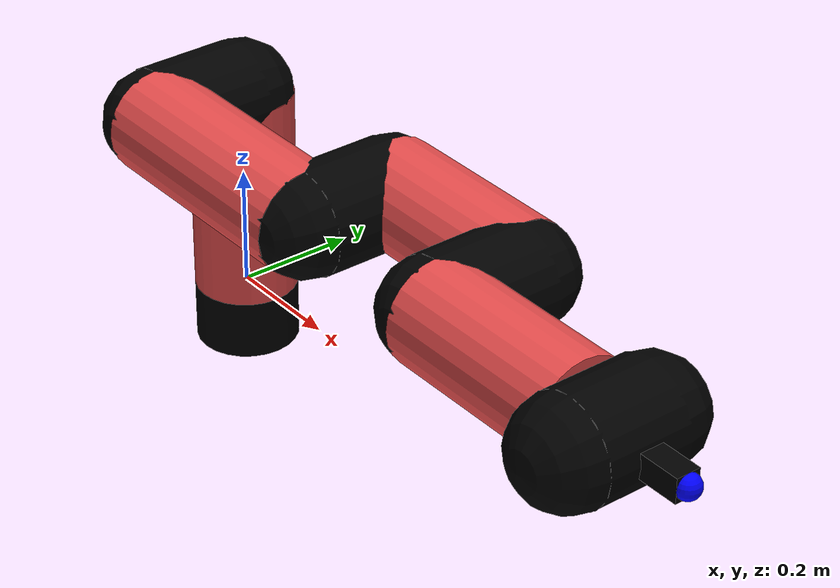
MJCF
<mujoco model="manipulator">
		<compiler angle="degree" coordinate="local" inertiafromgeom="auto" meshdir="meshes/"/>
		<option gravity="0 0 0" integrator="RK4" iterations="30" timestep="0.01"/>

		<default>
		<joint armature="1" limited="true" stiffness="10" damping="15" frictionloss="5.0"/>
		<geom conaffinity="1" condim="3" contype="1" friction=".5 .1 .1" margin="0.002"/>
		<motor ctrllimited="true"/>
		<position ctrllimited="true"/>
		</default>

		<asset>
		<texture builtin="gradient" height="100" rgb1="1.0 1.0 1.0" rgb2="1.0 1.0 1.0" type="skybox" width="100"/>
		<texture builtin="flat" height="32" name="arm_tex" rgb1="0.9 0.3 0.3" type="2d" width="32"/>
		<texture builtin="flat" height="32" name="gripper_tex" rgb1="0.0 0.0 0.0" type="cube" width="32"/>

		<material name="arm_mat" shininess="0.1" specular="0.1" texture="arm_tex"/>
		<material name="gripper_mat" shininess="1" specular="1" texture="gripper_tex"/>
		</asset>

		<worldbody>
		<light cutoff="45" diffuse=".8 .8 .8" dir="0 0.16 -1" directional="false" name="light" pos="0 -2.0 8.0" specular="0.3 0.3 0.3"/>

		<body name="base_link" pos="0 0 -0.1">
		<geom fromto="0 0 0 0 0 0.1" material="arm_mat" name="base_link" rgba="0.0 0.0 0.0 1" size="0.085" type="cylinder"/>
		</body>

		<body name="l1" pos="0 0 0">
<geom fromto="0 0 0 0 0 0.35" material="arm_mat" name="l1" rgba="0.9 0.3 0.3 1" size="0.085" type="cylinder"/>
<geom fromto="0 0 0.35 0 -0.16 0.35" material="arm_mat" name="l1_ex" rgba="0.0 0.0 0.0 1" size="0.085" type="capsule"/>
<joint axis="0 0 1" name="j1" pos="0 0 0" range="-90 90" damping="30.28" frictionloss="10.31"/>

<body name="l2" pos="0 -0.16 0.35">
<geom fromto="0 0 0 0.39 0 0" material="arm_mat" name="l2" rgba="0.9 0.3 0.3 1" size="0.085" type="cylinder"/>
<geom fromto="0.39 0 0 0.39 0.16 0" material="arm_mat" name="l2_ex" rgba="0.0 0.0 0.0 1" size="0.085" type="capsule"/>
<joint axis="-0.17 1.21 -0.08" name="j2" pos="0 0 0" range="-90 60" damping="35.55" frictionloss="10.35"/>

<body name="l3" pos="0.39 0.16 0">
<geom fromto="0 0 0 0.3 0 0" material="arm_mat" name="l3" rgba="0.9 0.3 0.3 1" size="0.085" type="cylinder"/>
<geom fromto="0.3 0 0 0.3 -0.16 0" material="arm_mat" name="l3_ex" rgba="0.0 0.0 0.0 1" size="0.085" type="capsule"/>
<joint axis="0.13 1.11 0.19" name="j3" pos="0 0 0" range="-30 60" damping="29.77" frictionloss="9.28"/>

<body name="l4" pos="0.3 -0.16 0">
<geom fromto="0 0 0 0.31 0 0" material="arm_mat" name="l4" rgba="0.9 0.3 0.3 1" size="0.085" type="cylinder"/>
<joint axis="0.06 1.13 -0.08" name="j4" pos="0 0 0" range="-30 60" damping="31.85" frictionloss="10.56"/>

<body name="gripper" pos="0.31 0 0">
<geom fromto="0.05 -0.07 0 0.05 0.07 0" material="gripper_mat" name="gripper" rgba="0.0 0.0 0.0 1" size="0.085" type="capsule"/><joint axis="1 0 0" name="j5" pos="0 0 0" range="-90 90" damping="15" frictionloss="5.0"/><body name="finger" pos="0.1 0 0">
<geom fromto="0 0.0 0 0.1 0.0 0" material="gripper_mat" name="finger" rgba="0.0 0.0 0.0 1" size="0.020 0.06 0.06" type="box"/>
</body>
<site name="current" pos="0.2 0. 0.0" rgba="0. 0. 1.0 1" size="0.02" type="sphere"/>
</body>
</body>
</body>
</body>
</body>
</worldbody>
<actuator>
<motor ctrllimited="true" ctrlrange="-1.0 1.0" joint="j1" gear="77.04"/>
<motor ctrllimited="true" ctrlrange="-1.0 1.0" joint="j2" gear="67.99"/>
<motor ctrllimited="true" ctrlrange="-1.0 1.0" joint="j3" gear="73.84"/>
<motor ctrllimited="true" ctrlrange="-1.0 1.0" joint="j4" gear="78.33"/>
<motor ctrllimited="true" ctrlrange="-1.0 1.0" joint="j5" gear="80"/>
</actuator>
</mujoco>
